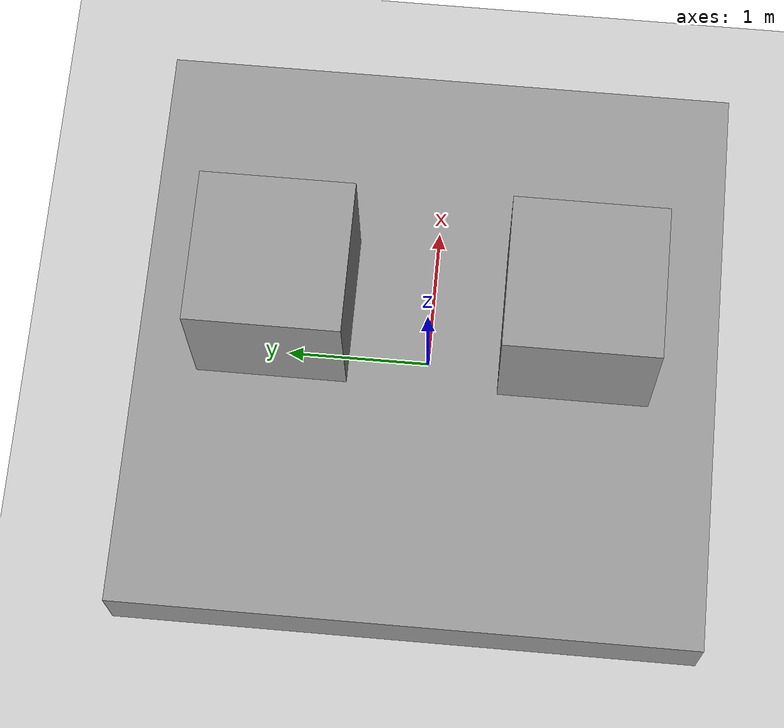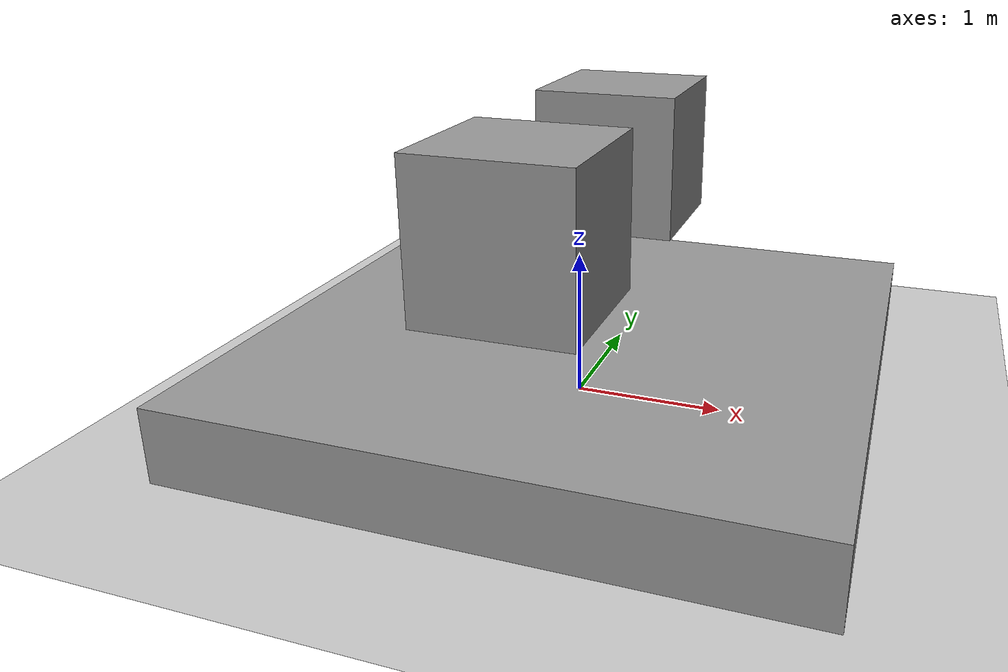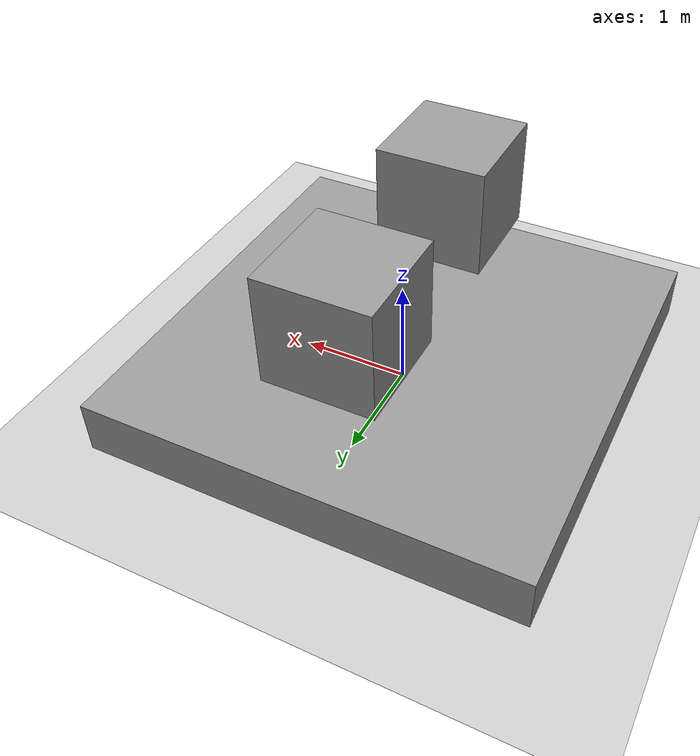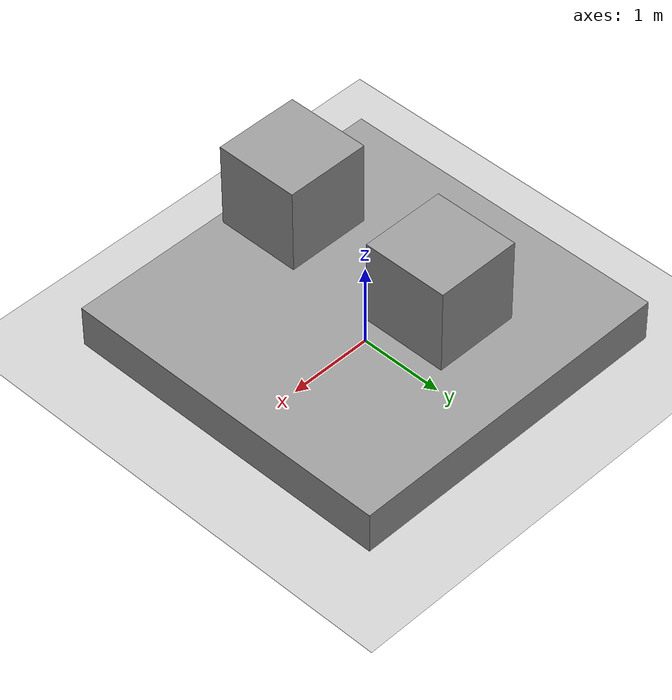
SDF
<?xml version='1.0'?>
<sdf version='1.4'>
  <world name='default'>
    <!-- include sun and ground plane -->
    <include><uri>model://sun</uri></include>
    <include><uri>model://ground_plane</uri></include>

    <model name="sensor_box">
      <static>true</static>
      <link name="link">
        <pose>0 0 0.251  0 0 0</pose>
        <collision name="collision">
          <geometry>
            <box>
              <size>4 4 0.5</size>
            </box>
          </geometry>
        </collision>
        <visual name="visual">
          <geometry>
            <box>
              <size>4 4 0.5</size>
            </box>
          </geometry>
          <material><script>
            <uri>file://media/materials/scripts/gazebo.material</uri>
            <name>Gazebo/Grey</name>
          </script></material>
        </visual>
        <sensor name="box_contact" type="contact">
          <always_on>true</always_on>
          <update_rate>1000</update_rate>
          <contact>
            <collision>collision</collision>
          </contact>
        </sensor>
      </link>
    </model>
    <model name='contact_box'>
      <pose>0.0 -1.0 1.5  0 0 0</pose>
      <allow_auto_disable>false</allow_auto_disable>
      <link name='link'>
        <collision name='collision'>
          <geometry>
            <box>
              <size>1.0 1.0 1.0</size>
            </box>
          </geometry>
          <surface>
            <contact>
              <collide_without_contact>false</collide_without_contact>
            </contact>
          </surface>
        </collision>
        <visual name='visual'>
          <geometry>
            <box>
              <size>1.0 1.0 1.0</size>
            </box>
          </geometry>
          <material><script>
            <uri>file://media/materials/scripts/gazebo.material</uri>
            <name>Gazebo/Grey</name>
          </script></material>
        </visual>
      </link>
    </model>
    <model name='collide_box'>
      <pose>0.0 1.0 1.5  0 0 0</pose>
      <allow_auto_disable>false</allow_auto_disable>
      <link name='link'>
        <collision name='collision'>
          <geometry>
            <box>
              <size>1.0 1.0 1.0</size>
            </box>
          </geometry>
          <surface>
            <contact>
              <collide_without_contact>true</collide_without_contact>
            </contact>
          </surface>
        </collision>
        <visual name='visual'>
          <geometry>
            <box>
              <size>1.0 1.0 1.0</size>
            </box>
          </geometry>
          <material><script>
            <uri>file://media/materials/scripts/gazebo.material</uri>
            <name>Gazebo/Grey</name>
          </script></material>
        </visual>
      </link>
    </model>
    <gui fullscreen='0'>
      <camera name='user_camera'>
        <pose>6.5 0.0 1.5  0.0 0.0 -3.14159</pose>
        <view_controller>orbit</view_controller>
      </camera>
    </gui>
  </world>
</sdf>
